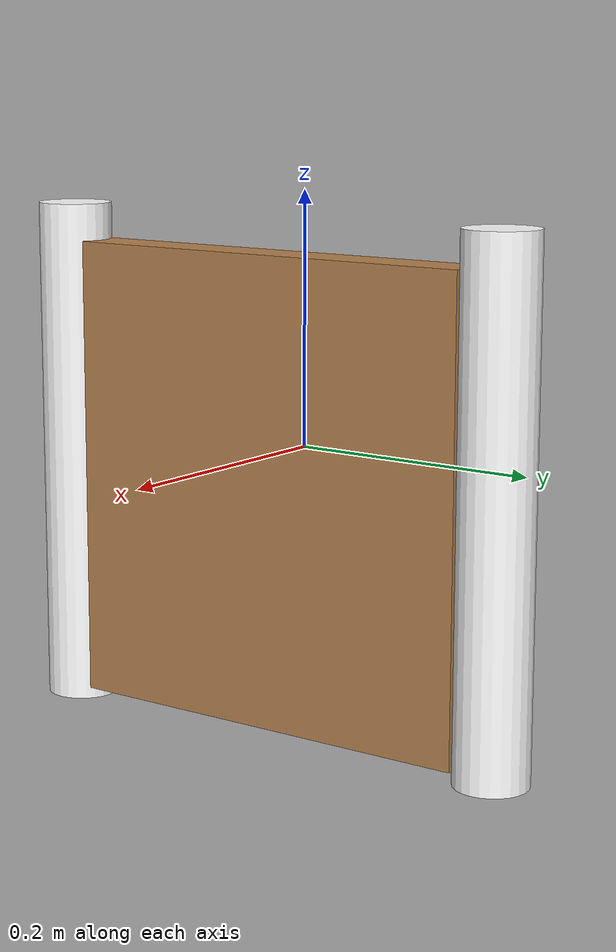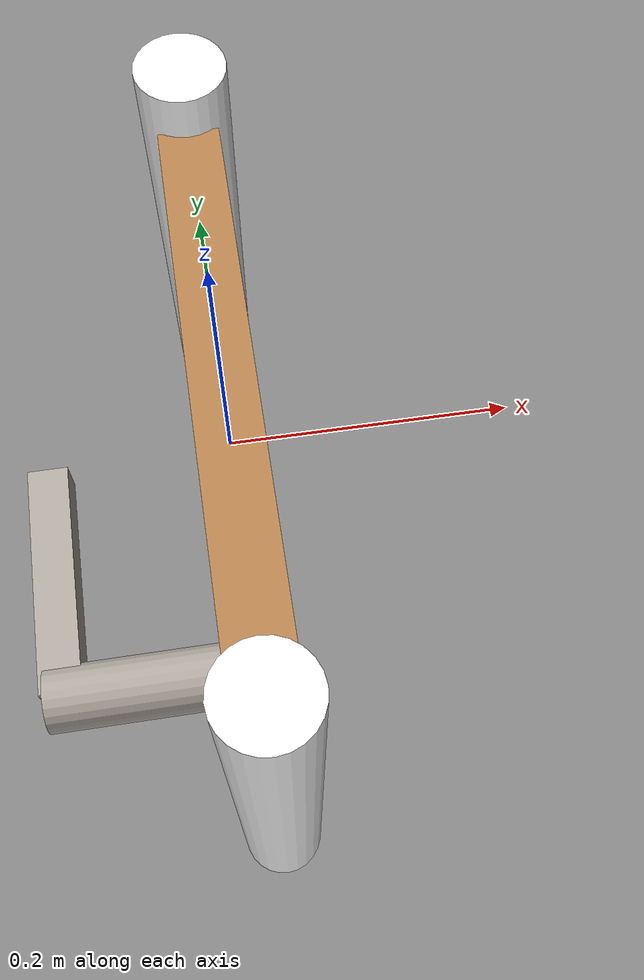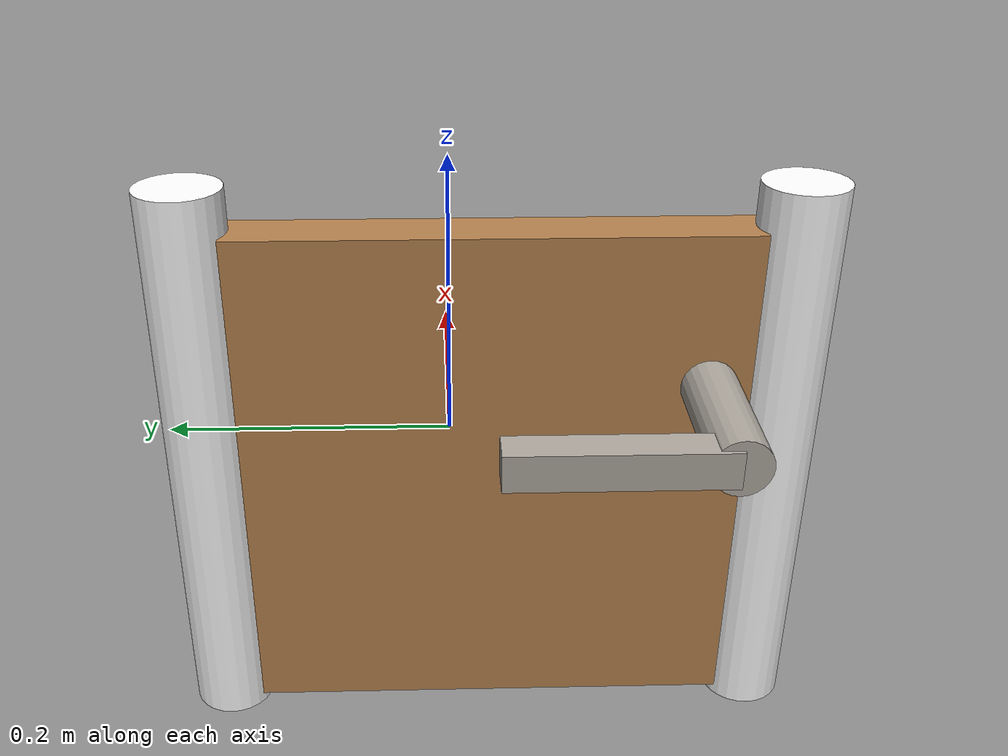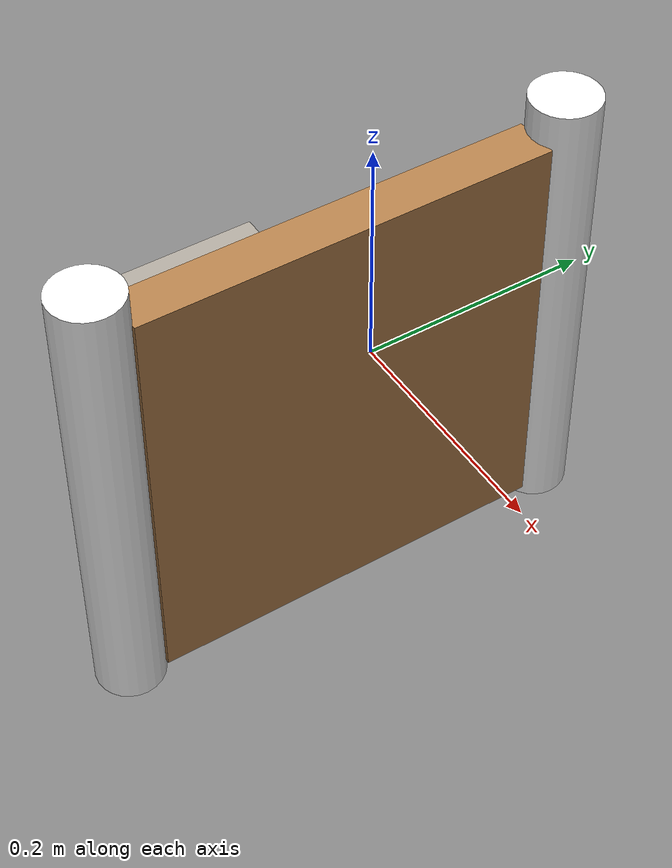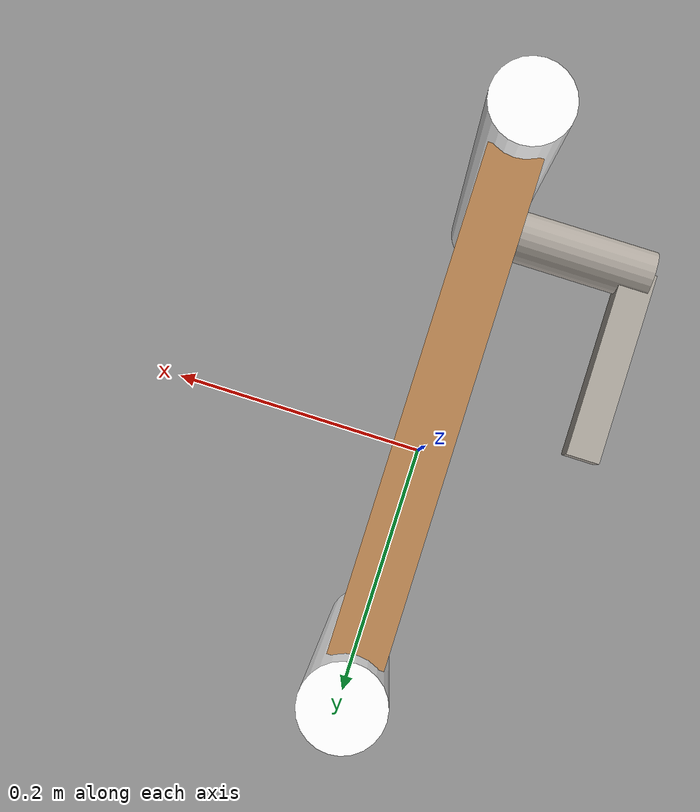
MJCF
<?xml version="1.0" encoding="utf-8"?>
<!-- from https://github.com/vikashplus/mj_envs/tree/master/mj_envs/hand_manipulation_suite/assets -->
<!-- Information about door can be found in this paper: https://arxiv.org/pdf/1709.10087.pdf -->

<mujoco model="door_lock">
  <asset>
    <texture file="textures/light-wood.png" type="cube" name="light-wood" />
    <texture file="textures/dark-wood.png" type="cube" name="dark-wood" />
    <texture file="textures/brass-ambra.png" type="cube" name="metal" />
    <material name="MatMetal" texture="metal" specular="1" shininess="0.3" rgba="0.9 0.9 0.9 1" />
    <material name="MatDarkWood" texture="dark-wood" texrepeat="3 3" specular="0.4" shininess="0.1" />
    <material name="MatLightWood" texture="light-wood" texrepeat="3 3" specular="0.4" shininess="0.1" />
  </asset>
    <worldbody>
      <body>
        <body name="object">
          <body name="frame" pos="0 0.22 -0.03" quat="0.707388 0 0 -0.706825">
              <!--inertial pos="0.25 0 0" quat="0.5 0.5 0.5 0.5" mass="7.85398" diaginertia="0.923301 0.764585 0.168533" -->
              <geom size="0.03 0.21" pos="0.455 0 0" type="cylinder" rgba="1 1 1 1" group="1" name="r_frame"/>
              <geom size="0.03 0.21" pos="0.045 0 0" type="cylinder" rgba="1 1 1 1" group="1" name="l_frame"/>
              <body name="door" pos="0.25 0 -0.01">
                  <!--inertial pos="0.0296816 -0.00152345 0" quat="0.701072 0 0 0.713091" mass="2.43455" diaginertia="0.0913751 0.0521615 0.043714" -->
                  <joint name="hinge" pos="-0.205 0 0" axis="0 0 1" range="-0.6 0.6" damping="1" frictionloss="1" limited="true"/>
                  <geom size="0.18 0.02 0.19" type="box" friction="1 1 1" group="1" name="panel" material="MatDarkWood" mass="0.015"/>
                  <body name="latch" pos="0.15 0 0.08" quat="0 0 1 0">
                      <!--inertial pos="-0.017762 0.0138544 0" quat="0.365653 0.605347 -0.36522 0.605365" mass="0.1" diaginertia="0.0483771 0.0410001 0.0111013" -->
                      <geom fromto="0 0 0 0 -0.13 0" size="0.02"  friction="5 5 5" type="cylinder" group="1" name="handle_base" material="MatMetal" mass="0.002"/>
                      <geom size="0.075 0.013 0.013" pos="0.075 -0.12 0" friction="5 5 5" type="box" group="1" name="handle" material="MatMetal" mass="0.002"/>
                      <site name="handle_start" pos="0 0 0" size="0.02" rgba="0 0 1 0"/>
                      <site name="handle_end" pos="0 -0.13 0" size="0.02" rgba="1 0 1 0"/>
                      <!-- Don't render the door handle site by default -->
                      <!--geom pos="0.12 -0.12 0" size="0.02" rgba="0 0 1 1" type="sphere" group="1"-->
                      <site name="handle" pos="0.1 -0.12 0" size="0.02" rgba="0 0 1 0" />
                  </body>
              </body>
          </body>
        </body>
        <site name="bottom_site" pos="0 0 -0.3" rgba="0 0 0 0" size="0.005"/>
        <site name="top_site" pos="0 0 0.3" rgba="0 0 0 0" size="0.005"/>
        <site name="horizontal_radius_site" pos="0.05 0 0" rgba="0 0 0 0" size="0.1"/>
      </body>
    </worldbody>
</mujoco>
